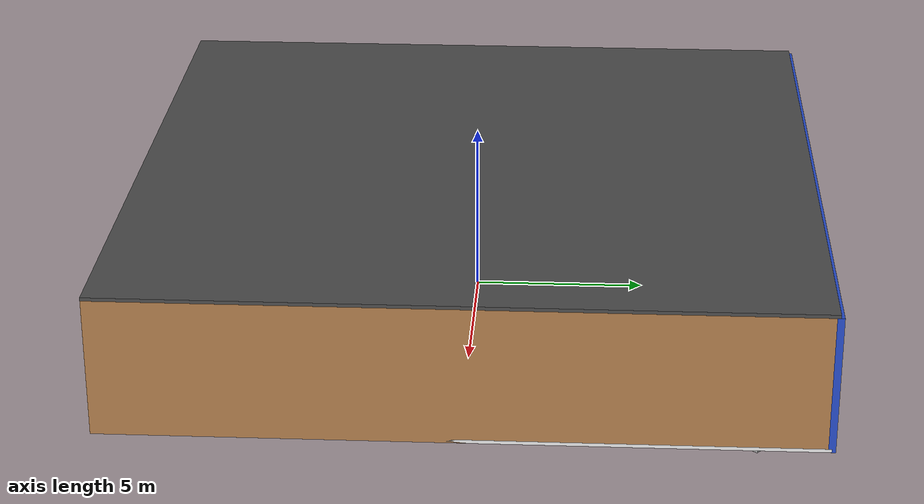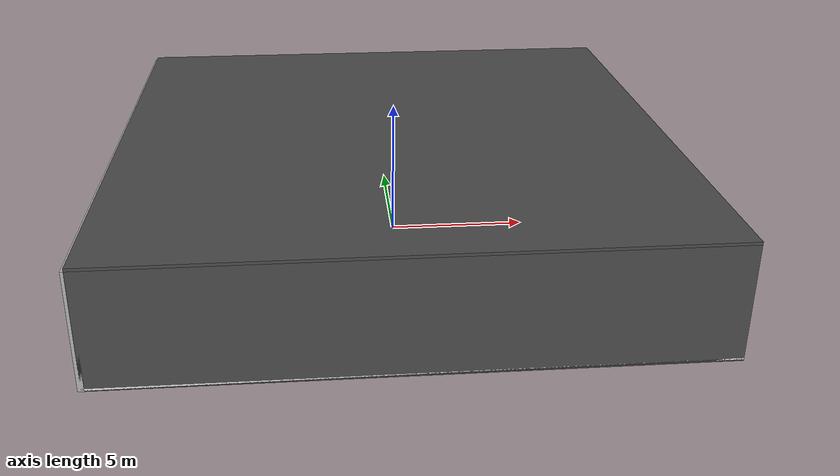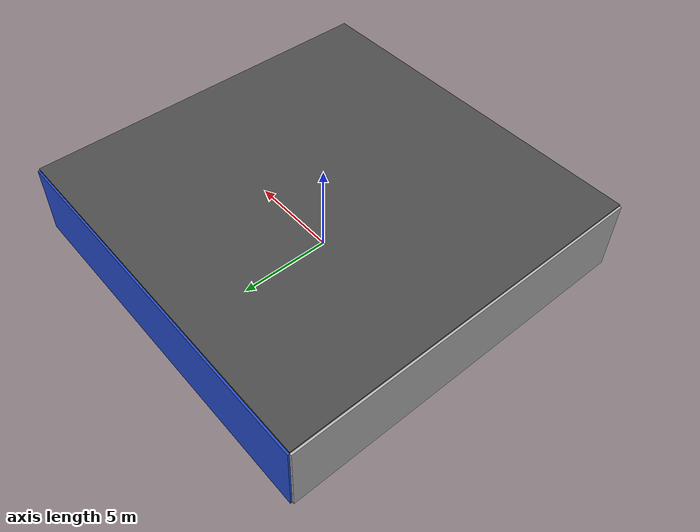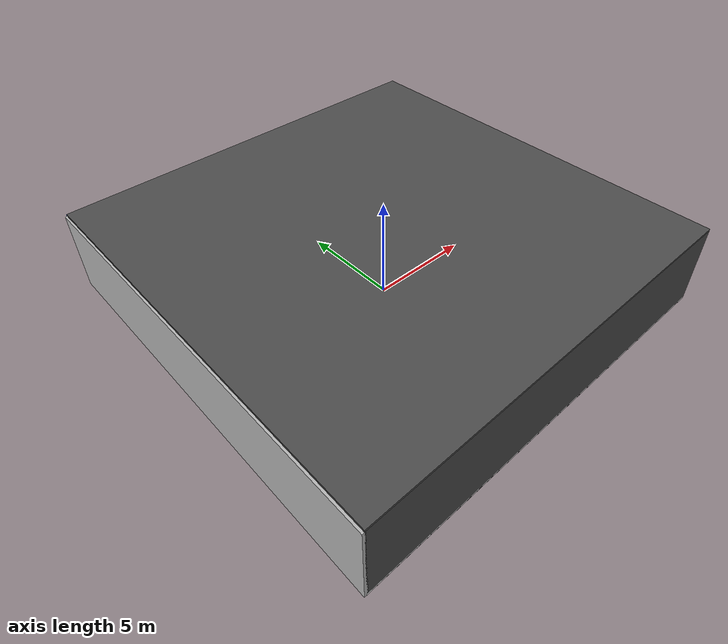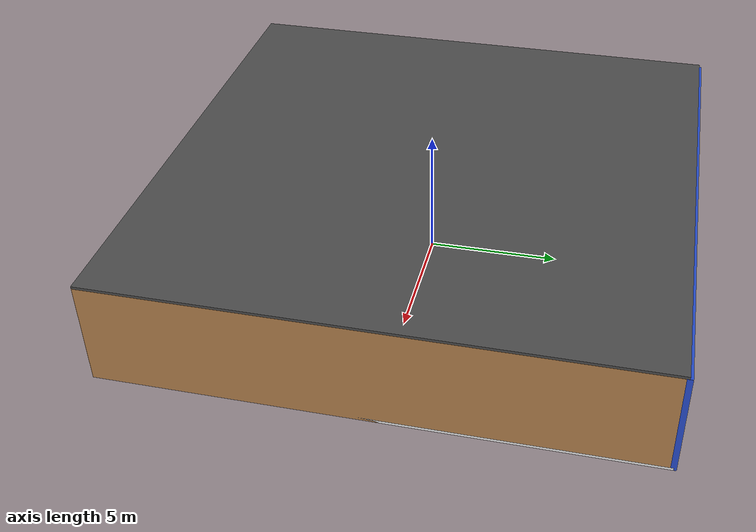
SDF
<sdf version="1.4">
 <world name="default">
  <physics type="ode">
   <max_step_size>0.001</max_step_size>
   <real_time_factor>1</real_time_factor>
   <real_time_update_rate>1000</real_time_update_rate>
   <gravity>0 0 -9.8</gravity>
  </physics>
  <scene><ambient>0.4 0.4 0.4 1</ambient><background>0.7 0.7 0.7 1</background><shadows>1</shadows></scene>
  <model name="Surrounding">
   <static>1</static>
   <link name="Ceiling">
    <collision name="Ceiling_Collision"><geometry><box><size>20 20 0.1</size></box></geometry></collision>
    <visual name="Ceiling_Visual">
     <geometry><box><size>20 20 0.1</size></box></geometry>
     <material>
      <script><uri>file://media/materials/scripts/gazebo.material</uri><name>Gazebo/DarkGrey</name></script>
     </material>
    </visual>
    <pose>0 0 4.05 0 0 0</pose>
   </link>
   <link name="Wall_South">
    <collision name="Wall_South_Collision">
     <geometry><box><size>20 0 4</size></box></geometry>
     <pose>0 0 2 0 -0 0</pose>
    </collision>
    <visual name="Wall_South_Visual">
     <pose>0 0 2 0 -0 0</pose>
     <geometry><box><size>20 0 4</size></box></geometry>
     <material>
      <script><uri>file://media/materials/scripts/gazebo.material</uri><name>Gazebo/DarkGrey</name></script>
     </material>
    </visual>
    <velocity_decay><linear>0</linear><angular>0</angular></velocity_decay>
    <pose>0 -10 0 0 -0 0</pose>
   </link>
   <link name="Wall_East">
    <collision name="Wall_21_Collision">
     <geometry><box><size>20 0 4</size></box></geometry>
     <pose>0 0 2 0 -0 0</pose>
    </collision>
    <visual name="Wall_21_Visual">
     <pose>0 0 2 0 -0 0</pose>
     <geometry><box><size>20 0 4</size></box></geometry>
     <material>
      <script><uri>file://media/materials/scripts/gazebo.material</uri><name>Gazebo/WoodFloor</name></script>
     </material>
    </visual>
    <velocity_decay><linear>0</linear><angular>0</angular></velocity_decay>
    <pose>10 0 0 0 -0 1.5708</pose>
   </link>
   <link name="Wall_North">
    <collision name="Wall_22_Collision">
     <geometry><box><size>20 0.2 4</size></box></geometry>
     <pose>0 0 2 0 -0 0</pose>
    </collision>
    <visual name="Wall_22_Visual">
     <pose>0 0 2 0 -0 0</pose>
     <geometry><box><size>20 0.2 4</size></box></geometry>
     <material>
      <script><uri>file://media/materials/scripts/gazebo.material</uri><name>Gazebo/Blue</name></script>
     </material>
    </visual>
    <velocity_decay><linear>0</linear><angular>0</angular></velocity_decay>
    <pose>0 10 0 0 -0 0</pose>
   </link>
   <link name="Wall_West">
    <collision name="Wall_23_Collision">
     <geometry><box><size>20 0.2 4</size></box></geometry>
     <pose>0 0 2 0 -0 0</pose>
    </collision>
    <visual name="Wall_23_Visual">
     <pose>0 0 2 0 -0 0</pose>
     <geometry><box><size>20 0.2 4</size></box></geometry>
     <material>
      <script><uri>file://media/materials/scripts/gazebo.material</uri><name>Gazebo/LightOn</name></script>
     </material>
    </visual>
    <velocity_decay><linear>0</linear><angular>0</angular></velocity_decay>
    <pose>-10 0 0 0 0 -1.5708</pose>
   </link>
   <link name="Ground_link">
    <collision name="collision">
     <pose>0 0 .05 0 -0 0</pose>
     <geometry><box><size>20 20 0.1</size></box></geometry>
    </collision>
    <visual name="visual">
     <pose>0 0 .05 0 -0 0</pose>
     <geometry><box><size>20 20 0.1</size></box></geometry>
     <material>
      <script><uri>file://media/materials/scripts/gazebo.material</uri><name>Gazebo/WhiteGlow</name></script>
     </material>
    </visual>
   </link>
   <static>1</static>
  </model>
  <spherical_coordinates>
   <surface_model>EARTH_WGS84</surface_model>
   <latitude_deg>0</latitude_deg>
   <longitude_deg>0</longitude_deg>
   <elevation>0</elevation>
   <heading_deg>0</heading_deg>
  </spherical_coordinates>
  <light name="lightball_0" type="diffuse">
   <diffuse>0.8 0.8 0.8 1</diffuse>
   <specular>0.2 0.2 0.2 1</specular>
   <attenuation>
    <range>100</range>
    <constant>0.7</constant>
    <linear>0.01</linear>
    <quadratic>0.001</quadratic>
   </attenuation>
   <direction>-0.5 0.1 -0.9</direction>
   <pose>-3.62157811277 7.23447835376 1.79938211711 0 0 0</pose>
  </light>
  <light name="lightball_1" type="diffuse">
   <diffuse>0.8 0.8 0.8 1</diffuse>
   <specular>0.2 0.2 0.2 1</specular>
   <attenuation>
    <range>100</range>
    <constant>0.7</constant>
    <linear>0.01</linear>
    <quadratic>0.001</quadratic>
   </attenuation>
   <direction>-0.5 0.1 -0.9</direction>
   <pose>3.07933102687 -6.42485297363 0.826561855032 0 0 0</pose>
  </light>
  <light name="lightball_2" type="diffuse">
   <diffuse>0.8 0.8 0.8 1</diffuse>
   <specular>0.2 0.2 0.2 1</specular>
   <attenuation>
    <range>100</range>
    <constant>0.7</constant>
    <linear>0.01</linear>
    <quadratic>0.001</quadratic>
   </attenuation>
   <direction>-0.5 0.1 -0.9</direction>
   <pose>7.24196106383 9.78340333046 0.702311988126 0 0 0</pose>
  </light>
  <light name="lightball_3" type="diffuse">
   <diffuse>0.8 0.8 0.8 1</diffuse>
   <specular>0.2 0.2 0.2 1</specular>
   <attenuation>
    <range>100</range>
    <constant>0.7</constant>
    <linear>0.01</linear>
    <quadratic>0.001</quadratic>
   </attenuation>
   <direction>-0.5 0.1 -0.9</direction>
   <pose>9.4893083021 -8.60450367022 1.11616351638 0 0 0</pose>
  </light>
  <light name="lightball_4" type="diffuse">
   <diffuse>0.8 0.8 0.8 1</diffuse>
   <specular>0.2 0.2 0.2 1</specular>
   <attenuation>
    <range>100</range>
    <constant>0.7</constant>
    <linear>0.01</linear>
    <quadratic>0.001</quadratic>
   </attenuation>
   <direction>-0.5 0.1 -0.9</direction>
   <pose>-7.00106893987 -4.844806937 1.12843794875 0 0 0</pose>
  </light>
  <light name="lightball_5" type="diffuse">
   <diffuse>0.8 0.8 0.8 1</diffuse>
   <specular>0.2 0.2 0.2 1</specular>
   <attenuation>
    <range>100</range>
    <constant>0.7</constant>
    <linear>0.01</linear>
    <quadratic>0.001</quadratic>
   </attenuation>
   <direction>-0.5 0.1 -0.9</direction>
   <pose>-1.73725538568 -4.82737908028 0.642304806797 0 0 0</pose>
  </light>
  <light name="lightball_6" type="diffuse">
   <diffuse>0.8 0.8 0.8 1</diffuse>
   <specular>0.2 0.2 0.2 1</specular>
   <attenuation>
    <range>100</range>
    <constant>0.7</constant>
    <linear>0.01</linear>
    <quadratic>0.001</quadratic>
   </attenuation>
   <direction>-0.5 0.1 -0.9</direction>
   <pose>9.80165700146 2.58082528918 0.939753014138 0 0 0</pose>
  </light>
  <light name="lightball_7" type="diffuse">
   <diffuse>0.8 0.8 0.8 1</diffuse>
   <specular>0.2 0.2 0.2 1</specular>
   <attenuation>
    <range>100</range>
    <constant>0.7</constant>
    <linear>0.01</linear>
    <quadratic>0.001</quadratic>
   </attenuation>
   <direction>-0.5 0.1 -0.9</direction>
   <pose>8.67189302021 3.11259216667 2.1664136932 0 0 0</pose>
  </light>
  <light name="lightball_8" type="diffuse">
   <diffuse>0.8 0.8 0.8 1</diffuse>
   <specular>0.2 0.2 0.2 1</specular>
   <attenuation>
    <range>100</range>
    <constant>0.7</constant>
    <linear>0.01</linear>
    <quadratic>0.001</quadratic>
   </attenuation>
   <direction>-0.5 0.1 -0.9</direction>
   <pose>8.12251223784 9.37418692796 1.79894725196 0 0 0</pose>
  </light>
  <light name="lightball_9" type="diffuse">
   <diffuse>0.8 0.8 0.8 1</diffuse>
   <specular>0.2 0.2 0.2 1</specular>
   <attenuation>
    <range>100</range>
    <constant>0.7</constant>
    <linear>0.01</linear>
    <quadratic>0.001</quadratic>
   </attenuation>
   <direction>-0.5 0.1 -0.9</direction>
   <pose>-0.809949547256 -6.28559837083 2.01610526888 0 0 0</pose>
  </light>
  <light name="lightball_10" type="diffuse">
   <diffuse>0.8 0.8 0.8 1</diffuse>
   <specular>0.2 0.2 0.2 1</specular>
   <attenuation>
    <range>100</range>
    <constant>0.7</constant>
    <linear>0.01</linear>
    <quadratic>0.001</quadratic>
   </attenuation>
   <direction>-0.5 0.1 -0.9</direction>
   <pose>-2.76167479494 -8.59308309182 2.46429546231 0 0 0</pose>
  </light>
  <light name="lightball_11" type="diffuse">
   <diffuse>0.8 0.8 0.8 1</diffuse>
   <specular>0.2 0.2 0.2 1</specular>
   <attenuation>
    <range>100</range>
    <constant>0.7</constant>
    <linear>0.01</linear>
    <quadratic>0.001</quadratic>
   </attenuation>
   <direction>-0.5 0.1 -0.9</direction>
   <pose>8.89742178466 -0.557820643092 1.43349406489 0 0 0</pose>
  </light>
  <include>
   <uri>model://textured_shapes</uri>
   <pose>-6.67663106525 -1.39953295328 0 0 0 1.59725477763</pose>
  </include>
  <include>
   <uri>model://textured_shapes</uri>
   <pose>-4.47485895663 -1.33592954892 0 0 0 2.41706296911</pose>
  </include>
  <include>
   <uri>model://construction_cone</uri>
   <pose>-4.99695105653 8.02034570595 0 0 0 2.71243595554</pose>
  </include>
  <include>
   <uri>model://textured_shapes</uri>
   <pose>7.57631784193 6.87419986325 0 0 0 2.43936875536</pose>
  </include>
 </world>
</sdf>

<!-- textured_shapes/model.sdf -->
<sdf version="1.6">
  <model name="textured_shapes">
    <pose>0 0 0.5 0 0 0</pose>
    <link name="box">
      <pose>0 -1.5 0 0 0 0</pose>
      <collision name="collision">
        <geometry>
          <box>
            <size>1 1 1</size>
          </box>
        </geometry>
      </collision>
      <visual name="visual">
        <geometry>
          <box>
            <size>1 1 1</size>
          </box>
        </geometry>
        <material>
          <script>
            <uri>model://../model_source/models/textured_shapes/materials/scripts</uri>
            <uri>model://../model_source/models/textured_shapes/materials/textures</uri>
            <name>TexturedShape/Squares</name>
          </script>
        </material>
      </visual>
    </link>
    <link name="sphere">
      <collision name="collision">
        <geometry>
          <sphere>
            <radius>0.5</radius>
          </sphere>
        </geometry>
      </collision>
      <visual name="visual">
        <geometry>
          <sphere>
            <radius>0.5</radius>
          </sphere>
        </geometry>
        <material>
          <script>
            <uri>model://../model_source/models/textured_shapes/materials/scripts</uri>
            <uri>model://../model_source/models/textured_shapes/materials/textures</uri>
            <name>TexturedShape/Squares</name>
          </script>
        </material>
      </visual>
    </link>
    <link name="cylinder">
      <pose>0 1.5 0 0 0 0</pose>
      <collision name="collision">
        <geometry>
          <cylinder>
            <radius>0.5</radius>
            <length>1</length>
          </cylinder>
        </geometry>
      </collision>
      <visual name="visual">
        <geometry>
          <cylinder>
            <radius>0.5</radius>
            <length>1</length>
          </cylinder>
        </geometry>
        <material>
          <script>
            <uri>model://../model_source/models/textured_shapes/materials/scripts</uri>
            <uri>model://../model_source/models/textured_shapes/materials/textures</uri>
            <name>TexturedShape/Squares</name>
          </script>
        </material>
      </visual>
    </link>
  </model>
</sdf>

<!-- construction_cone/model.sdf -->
<sdf version="1.5">
  <model name="Construction Cone">
    <link name="link">
      <collision name="collision">
        <geometry>
          <mesh>
            <scale>10 10 10</scale>
            <uri>file://isr-testbed/construction_cone/meshes/construction_cone.dae</uri>
          </mesh>
        </geometry>
      </collision>
      <visual name="visual">
        <geometry>
          <mesh>
            <scale>10 10 10</scale>
            <uri>file://isr-testbed/construction_cone/meshes/construction_cone.dae</uri>
          </mesh>
        </geometry>
      </visual>
    </link>
  </model>
</sdf>
